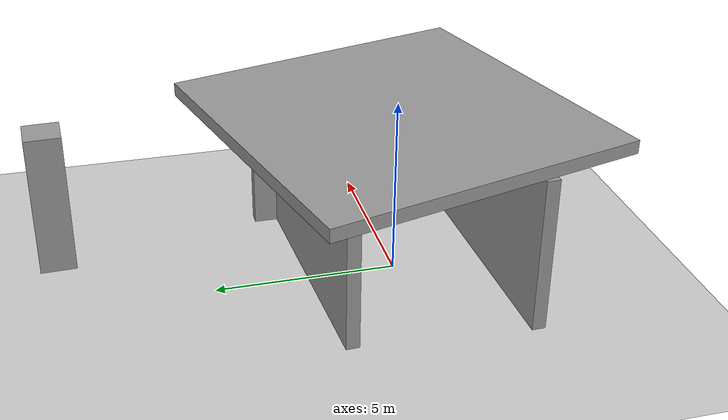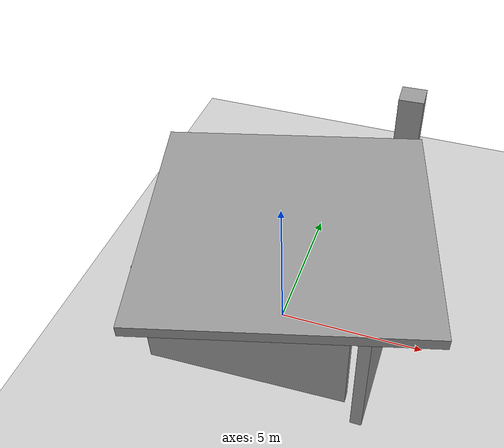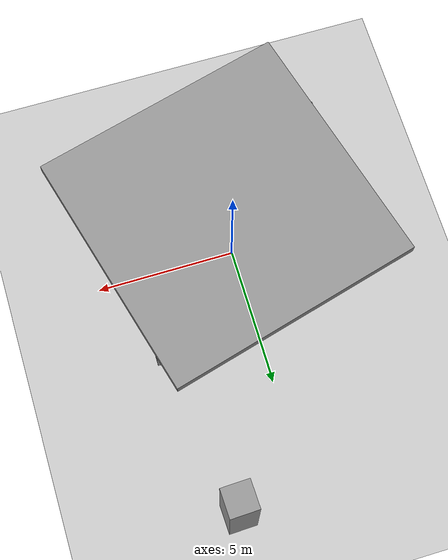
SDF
<sdf version="1.7">
 <world name="default">
  <light name="sun" type="directional">
   <pose>0 0 10 0 -0 0</pose>
   <diffuse>0.8 0.8 0.8 1</diffuse>
   <specular>0.2 0.2 0.2 1</specular>
   <attenuation>
    <range>1000</range>
    <constant>0.9</constant>
    <linear>0.01</linear>
    <quadratic>0.001</quadratic>
   </attenuation>
   <direction>-0.5 0.1 -0.9</direction>
   <spot><inner_angle>0</inner_angle><outer_angle>0</outer_angle><falloff>0</falloff></spot>
  </light>
  <model name="ground_plane">
   <static>1</static>
   <link name="link">
    <collision name="collision">
     <geometry><plane><normal>0 0 1</normal><size>100 100</size></plane></geometry>
     <surface>
      <contact><collide_bitmask>65535</collide_bitmask></contact>
      <friction><ode><mu>100</mu><mu2>50</mu2></ode></friction>
     </surface>
    </collision>
    <visual name="visual">
     <cast_shadows>0</cast_shadows>
     <geometry><plane><normal>0 0 1</normal><size>100 100</size></plane></geometry>
     <material>
      <script><uri>file://media/materials/scripts/gazebo.material</uri><name>Gazebo/Grey</name></script>
     </material>
    </visual>
   </link>
  </model>
  <physics name="default_physics" default="0" type="ode">
   <ode>
    <solver>
     <type>quick</type>
     <iters>10</iters>
     <sor>1.3</sor>
     <use_dynamic_moi_rescaling>0</use_dynamic_moi_rescaling>
    </solver>
    <constraints>
     <cfm>0</cfm>
     <erp>0.2</erp>
     <contact_max_correcting_vel>100</contact_max_correcting_vel>
     <contact_surface_layer>0.001</contact_surface_layer>
    </constraints>
   </ode>
   <max_step_size>0.001</max_step_size>
   <real_time_update_rate>1000</real_time_update_rate>
   <real_time_factor>1</real_time_factor>
  </physics>
  <gravity>0 0 -9.8066</gravity>
  <magnetic_field>6e-06 2.3e-05 -4.2e-05</magnetic_field>
  <atmosphere type="adiabatic"/>
  <scene><ambient>0.4 0.4 0.4 1</ambient><background>0.7 0.7 0.7 1</background><shadows>1</shadows></scene>
  <spherical_coordinates>
   <surface_model>EARTH_WGS84</surface_model>
   <latitude_deg>0</latitude_deg>
   <longitude_deg>0</longitude_deg>
   <elevation>0</elevation>
   <heading_deg>0</heading_deg>
  </spherical_coordinates>
  <model name="unit_box_clone_clone_clone_clone_0">
   <pose>-0.017885 2.2552 2.16587 0.000103 -0.000444 0.060097</pose>
   <link name="link">
    <inertial>
     <mass>1</mass>
     <inertia>
      <ixx>0.166667</ixx>
      <ixy>0</ixy>
      <ixz>0</ixz>
      <iyy>0.166667</iyy>
      <iyz>0</iyz>
      <izz>0.166667</izz>
     </inertia>
    </inertial>
    <collision name="collision"><geometry><box><size>6.70212 0.366559 4.33338</size></box></geometry></collision>
    <visual name="visual">
     <geometry><box><size>6.70212 0.366559 4.33338</size></box></geometry>
     <material>
      <script><name>Gazebo/Grey</name><uri>file://media/materials/scripts/gazebo.material</uri></script>
     </material>
    </visual>
   </link>
  </model>
  <model name="unit_box_clone">
   <pose>2.50018 9.09199 2.03247 -1e-06 -1.9e-05 0.034768</pose>
   <link name="link">
    <inertial>
     <mass>1</mass>
     <inertia>
      <ixx>0.166667</ixx>
      <ixy>0</ixy>
      <ixz>0</ixz>
      <iyy>0.166667</iyy>
      <iyz>0</iyz>
      <izz>0.166667</izz>
     </inertia>
    </inertial>
    <collision name="collision"><geometry><box><size>1 1 4.06493</size></box></geometry></collision>
    <visual name="visual">
     <geometry><box><size>1 1 4.06493</size></box></geometry>
     <material>
      <script><name>Gazebo/Grey</name><uri>file://media/materials/scripts/gazebo.material</uri></script>
     </material>
    </visual>
   </link>
  </model>
  <model name="unit_box_clone_clone_clone_clone_0_clone">
   <pose>0.265274 0.007281 4.51363 1.56959 0.000372 0.262403</pose>
   <link name="link">
    <inertial>
     <mass>1</mass>
     <inertia>
      <ixx>0.166667</ixx>
      <ixy>0</ixy>
      <ixz>0</ixz>
      <iyy>0.166667</iyy>
      <iyz>0</iyz>
      <izz>0.166667</izz>
     </inertia>
    </inertial>
    <collision name="collision"><geometry><box><size>8.88849 0.366562 8.79537</size></box></geometry></collision>
    <visual name="visual">
     <geometry><box><size>8.88849 0.366562 8.79537</size></box></geometry>
     <material>
      <script><name>Gazebo/Grey</name><uri>file://media/materials/scripts/gazebo.material</uri></script>
     </material>
    </visual>
   </link>
  </model>
  <model name="unit_box_clone_clone_clone_clone_0_clone_clone">
   <pose>3.52323 -0.057654 2.16566 1.9e-05 0.000505 1.57086</pose>
   <link name="link">
    <inertial>
     <mass>1</mass>
     <inertia>
      <ixx>0.166667</ixx>
      <ixy>0</ixy>
      <ixz>0</ixz>
      <iyy>0.166667</iyy>
      <iyz>0</iyz>
      <izz>0.166667</izz>
     </inertia>
    </inertial>
    <collision name="collision"><geometry><box><size>6.70212 0.366562 4.33338</size></box></geometry></collision>
    <visual name="visual">
     <geometry><box><size>6.70212 0.366562 4.33338</size></box></geometry>
     <material>
      <script><name>Gazebo/Grey</name><uri>file://media/materials/scripts/gazebo.material</uri></script>
     </material>
    </visual>
   </link>
  </model>
  <model name="unit_box_clone_clone_clone_clone_0_clone_0">
   <pose>-0.349369 -2.6852 2.16576 0.000192 -0.000367 0.031015</pose>
   <link name="link">
    <inertial>
     <mass>1</mass>
     <inertia>
      <ixx>0.166667</ixx>
      <ixy>0</ixy>
      <ixz>0</ixz>
      <iyy>0.166667</iyy>
      <iyz>0</iyz>
      <izz>0.166667</izz>
     </inertia>
    </inertial>
    <collision name="collision"><geometry><box><size>6.70212 0.366559 4.33338</size></box></geometry></collision>
    <visual name="visual">
     <geometry><box><size>6.70212 0.366559 4.33338</size></box></geometry>
     <material>
      <script><name>Gazebo/Grey</name><uri>file://media/materials/scripts/gazebo.material</uri></script>
     </material>
    </visual>
   </link>
  </model>
 </world>
</sdf>
